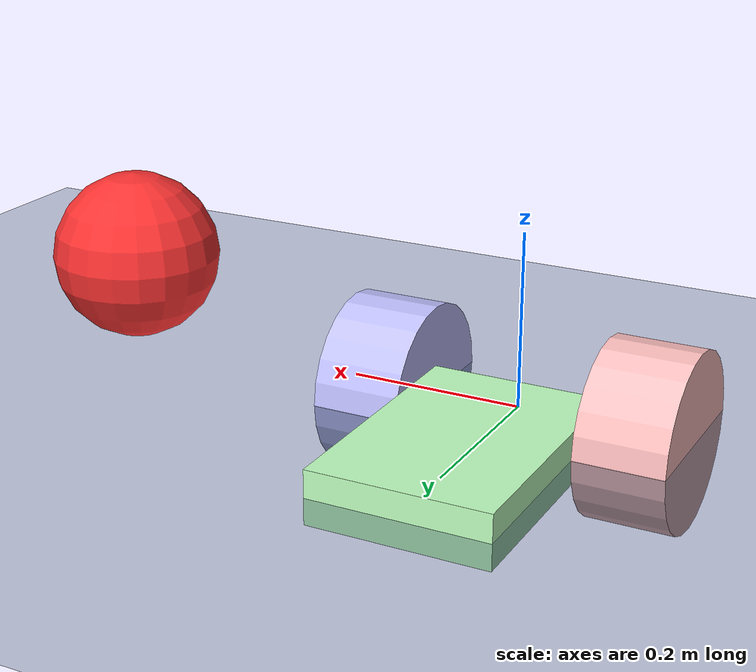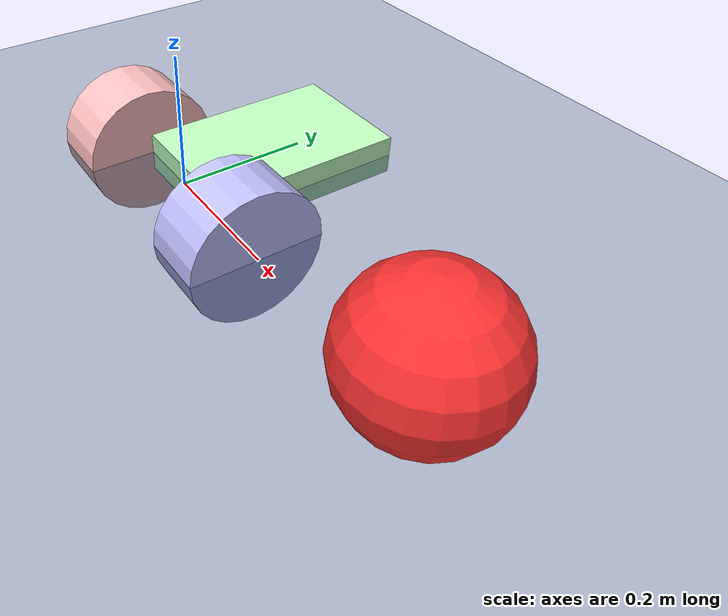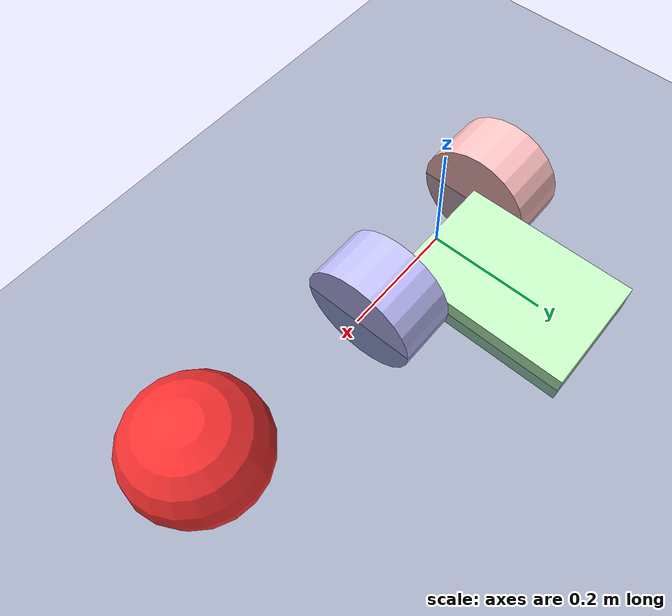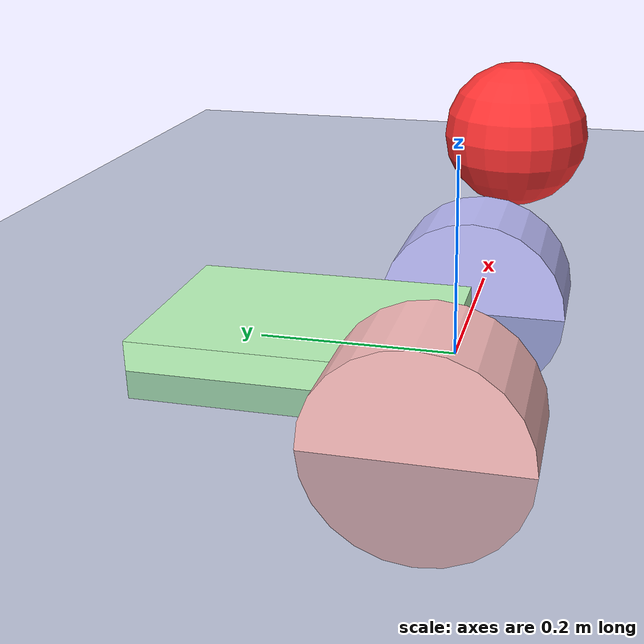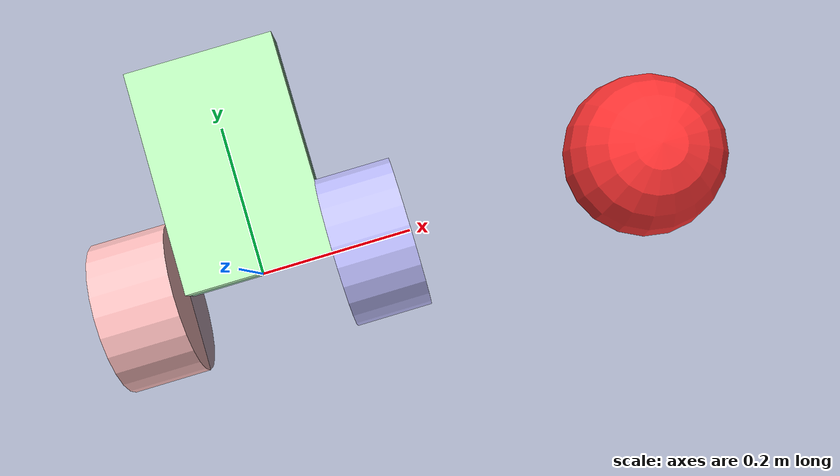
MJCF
<mujoco model="floor">
  <compiler boundmass="1.0000000000000001e-05" boundinertia="9.9999999999999994e-12" coordinate="local" angle="degree" eulerseq="xyz"/>
  <option timestep="0.002" cone="elliptic" noslip_iterations="5" noslip_tolerance="0"/>
  <visual>
    <headlight ambient="0.40000000000000002 0.40000000000000002 0.40000000000000002" diffuse="0.80000000000000004 0.80000000000000004 0.80000000000000004" specular="0.10000000000000001 0.10000000000000001 0.10000000000000001"/>
    <map znear="0.01"/>
    <scale forcewidth="0.01" contactwidth="0.059999999999999998" contactheight="0.01" jointwidth="0.01" framelength="0.29999999999999999" framewidth="0.01"/>
  </visual>
  <default>
    <default class="/"/>
    <default class="roller/"/>
  </default>
  <asset>
    <texture name="groundplane" type="2d" builtin="checker" rgb1="0.20000000000000001 0.29999999999999999 0.40000000000000002" rgb2="0.10000000000000001 0.20000000000000001 0.29999999999999999" mark="edge" markrgb="0.80000000000000004 0.80000000000000004 0.80000000000000004" width="200" height="200"/>
    <material name="groundplane" class="/" texture="groundplane" texrepeat="2 2" texuniform="true" reflectance="0.20000000000000001"/>
  </asset>
  <worldbody>
    <geom name="groundplane" class="/" type="plane" size="8 8 0.25" material="groundplane"/>
    <camera name="top_camera" class="/" fovy="10.058147163570894" pos="0 0 100" quat="1 0 0 0"/>
    <light name="//unnamed_light_0" class="/" pos="0 0 4"/>
    <body name="roller/">
      <freejoint name="roller/"/>
      <geom name="roller/torso" class="roller/" type="box" size="0.10000000000000001 0.14999999999999999 0.029999999999999999" rgba="0.75 1 0.75 1" mass="0.5" pos="0 0.14999999999999999 0"/>
      <body name="roller/left_wheel" pos="-0.14999999999999999 0 0">
        <joint name="roller/left_wheel_joint" class="roller/" type="hinge" axis="1 0 0" damping="1.5"/>
        <geom name="roller/left_tyre" class="roller/" type="cylinder" size="0.10000000000000001 0.050000000000000003" rgba="1 0.75 0.75 1" mass="0.10000000000000001" euler="0 90 0"/>
      </body>
      <body name="roller/right_wheel" pos="0.14999999999999999 0 0">
        <joint name="roller/right_wheel_joint" class="roller/" type="hinge" axis="1 0 0" damping="1.5"/>
        <geom name="roller/right_tyre" class="roller/" type="cylinder" size="0.10000000000000001 0.050000000000000003" rgba="0.75 0.75 1 1" mass="0.10000000000000001" euler="0 90 0"/>
      </body>
    </body>
    <site name="target_site" class="/" type="sphere" rgba="1 0.20000000000000001 0.20000000000000001 1" size="0.10000000000000001 0.10000000000000001 0.10000000000000001" pos="0.5 0 0.10000000000000001"/>
  </worldbody>
  <actuator>
    <velocity name="roller/left_motor" class="roller/" ctrllimited="true" ctrlrange="-5 5" joint="roller/left_wheel_joint"/>
    <velocity name="roller/right_motor" class="roller/" ctrllimited="true" ctrlrange="-5 5" joint="roller/right_wheel_joint"/>
  </actuator>
</mujoco>
